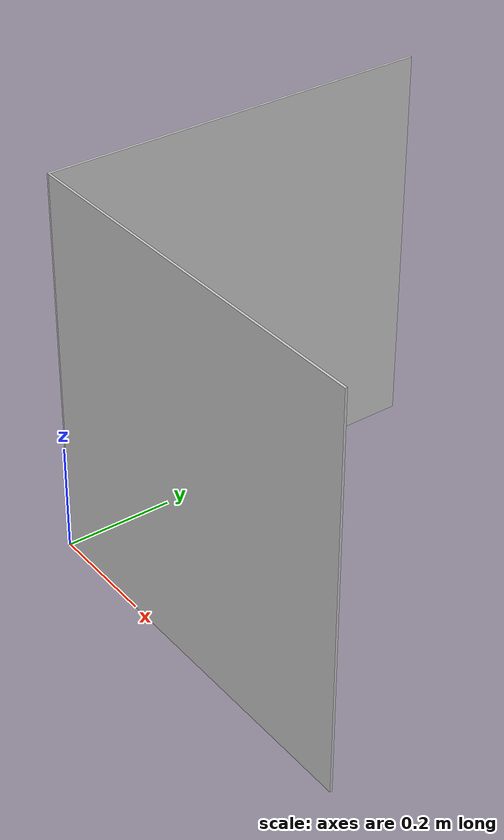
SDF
<?xml version="1.0" ?>
<sdf version="1.10">
    <model name = "lfd_boards">
      <static>true</static>
      <link name = "link">
        <visual name = "lfd_visual_x">
          <pose>0.002 0.3556 0.355 0 0 0</pose>
          <geometry>
            <box>
              <size>0.004 0.7112 0.7112</size>
            </box>
          </geometry>
          <material>
            <ambient>0.8 0.8 0.8 1</ambient>
            <diffuse>0.8 0.8 0.8 1</diffuse>
            <specular>0.8 0.8 0.8 1</specular>
          </material>
        </visual>
        <visual name = "lfd_visual_y">
          <pose>0.3556 0.002 0.355 0 0 0</pose>
          <geometry>
            <box>
              <size>0.7112 0.004 0.7112</size>
            </box>
          </geometry>
          <material>
            <ambient>0.8 0.8 0.8 1</ambient>
            <diffuse>0.8 0.8 0.8 1</diffuse>
            <specular>0.8 0.8 0.8 1</specular>
          </material>
        </visual>
      </link>
    </model>
</sdf>
